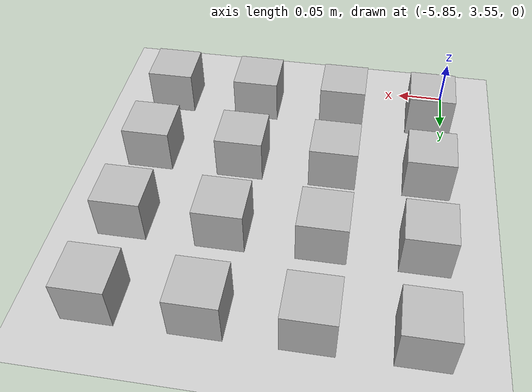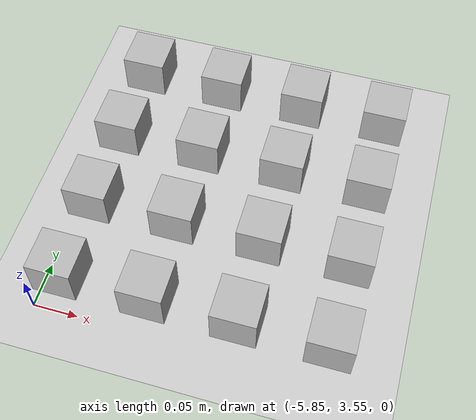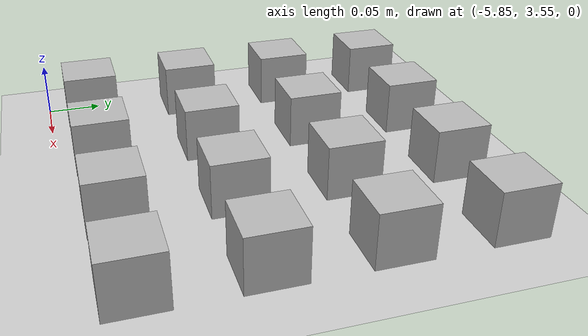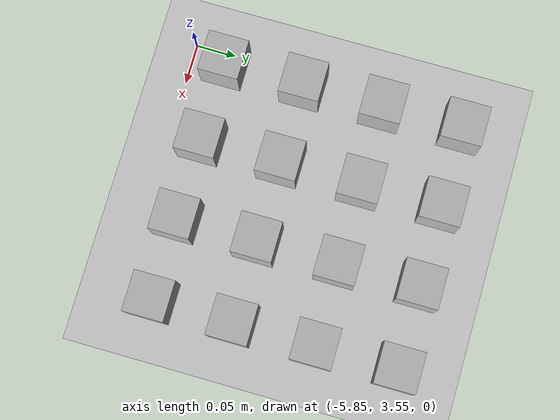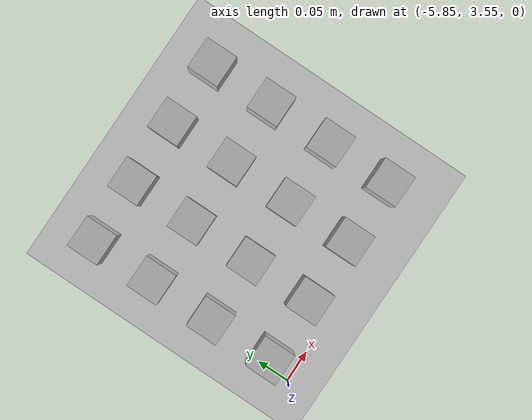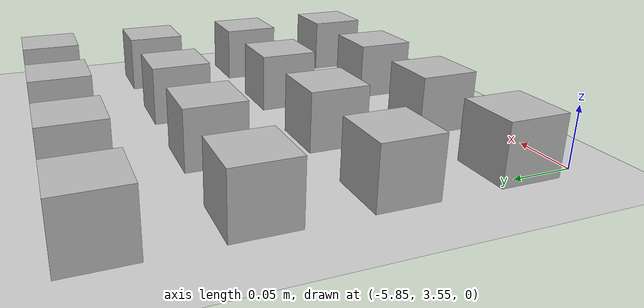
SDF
<sdf version="1.6">
 <world name="default">
  <model name="ground_plane">
   <static>1</static>
   <link name="link">
    <collision name="collision">
     <geometry><plane><normal>0 0 1</normal><size>100 100</size></plane></geometry>
     <surface><friction><ode><mu>100</mu><mu2>50</mu2></ode></friction></surface>
    </collision>
    <visual name="visual">
     <cast_shadows>0</cast_shadows>
     <geometry><plane><normal>0 0 1</normal><size>100 100</size></plane></geometry>
     <material>
      <script><uri>file://media/materials/scripts/gazebo.material</uri><name>Gazebo/Grey</name></script>
     </material>
    </visual>
   </link>
  </model>
  <model name="at32">
   <static>0</static>
   <link name="link">
    <inertial>
     <mass>0.01</mass>
     <inertia><ixx>4e-05</ixx><ixy>0</ixy><ixz>0</ixz><iyy>4e-05</iyy><iyz>0</iyz><izz>4e-05</izz></inertia>
    </inertial>
    <visual name="visual">
     <geometry><box><size>0.05 0.05 0.05</size></box></geometry>
     <material>
      <script>
       <uri>model://at0/materials/scripts</uri>
       <uri>model://at0/materials/textures</uri>
       <name>at0/Diffuse</name>
      </script>
     </material>
    </visual>
    <collision name="collision">
     <geometry><box><size>0.05 0.05 0.05</size></box></geometry>
     <surface><friction><ode><mu>0.8</mu><mu2>0.7</mu2></ode></friction></surface>
    </collision>
   </link>
   <pose>-5.83375 3.59232 0.025 0 -0 0</pose>
  </model>
  <model name="at33">
   <static>0</static>
   <link name="link">
    <inertial>
     <mass>0.01</mass>
     <inertia><ixx>4e-05</ixx><ixy>0</ixy><ixz>0</ixz><iyy>4e-05</iyy><iyz>0</iyz><izz>4e-05</izz></inertia>
    </inertial>
    <visual name="visual">
     <geometry><box><size>0.05 0.05 0.05</size></box></geometry>
     <material>
      <script>
       <uri>model://at0/materials/scripts</uri>
       <uri>model://at0/materials/textures</uri>
       <name>at0/Diffuse</name>
      </script>
     </material>
    </visual>
    <collision name="collision">
     <geometry><box><size>0.05 0.05 0.05</size></box></geometry>
     <surface><friction><ode><mu>0.8</mu><mu2>0.7</mu2></ode></friction></surface>
    </collision>
   </link>
   <pose>-5.73375 3.59232 0.025 0 -0 0</pose>
  </model>
  <model name="at34">
   <static>0</static>
   <link name="link">
    <inertial>
     <mass>0.01</mass>
     <inertia><ixx>4e-05</ixx><ixy>0</ixy><ixz>0</ixz><iyy>4e-05</iyy><iyz>0</iyz><izz>4e-05</izz></inertia>
    </inertial>
    <visual name="visual">
     <geometry><box><size>0.05 0.05 0.05</size></box></geometry>
     <material>
      <script>
       <uri>model://at0/materials/scripts</uri>
       <uri>model://at0/materials/textures</uri>
       <name>at0/Diffuse</name>
      </script>
     </material>
    </visual>
    <collision name="collision">
     <geometry><box><size>0.05 0.05 0.05</size></box></geometry>
     <surface><friction><ode><mu>0.8</mu><mu2>0.7</mu2></ode></friction></surface>
    </collision>
   </link>
   <pose>-5.63375 3.59232 0.025 0 -0 0</pose>
  </model>
  <model name="at35">
   <static>0</static>
   <link name="link">
    <inertial>
     <mass>0.01</mass>
     <inertia><ixx>4e-05</ixx><ixy>0</ixy><ixz>0</ixz><iyy>4e-05</iyy><iyz>0</iyz><izz>4e-05</izz></inertia>
    </inertial>
    <visual name="visual">
     <geometry><box><size>0.05 0.05 0.05</size></box></geometry>
     <material>
      <script>
       <uri>model://at0/materials/scripts</uri>
       <uri>model://at0/materials/textures</uri>
       <name>at0/Diffuse</name>
      </script>
     </material>
    </visual>
    <collision name="collision">
     <geometry><box><size>0.05 0.05 0.05</size></box></geometry>
     <surface><friction><ode><mu>0.8</mu><mu2>0.7</mu2></ode></friction></surface>
    </collision>
   </link>
   <pose>-5.53375 3.59232 0.025 0 -0 0</pose>
  </model>
  <model name="at36">
   <static>0</static>
   <link name="link">
    <inertial>
     <mass>0.01</mass>
     <inertia><ixx>4e-05</ixx><ixy>0</ixy><ixz>0</ixz><iyy>4e-05</iyy><iyz>0</iyz><izz>4e-05</izz></inertia>
    </inertial>
    <visual name="visual">
     <geometry><box><size>0.05 0.05 0.05</size></box></geometry>
     <material>
      <script>
       <uri>model://at0/materials/scripts</uri>
       <uri>model://at0/materials/textures</uri>
       <name>at0/Diffuse</name>
      </script>
     </material>
    </visual>
    <collision name="collision">
     <geometry><box><size>0.05 0.05 0.05</size></box></geometry>
     <surface><friction><ode><mu>0.8</mu><mu2>0.7</mu2></ode></friction></surface>
    </collision>
   </link>
   <pose>-5.83375 3.69232 0.025 0 -0 0</pose>
  </model>
  <model name="at37">
   <static>0</static>
   <link name="link">
    <inertial>
     <mass>0.01</mass>
     <inertia><ixx>4e-05</ixx><ixy>0</ixy><ixz>0</ixz><iyy>4e-05</iyy><iyz>0</iyz><izz>4e-05</izz></inertia>
    </inertial>
    <visual name="visual">
     <geometry><box><size>0.05 0.05 0.05</size></box></geometry>
     <material>
      <script>
       <uri>model://at0/materials/scripts</uri>
       <uri>model://at0/materials/textures</uri>
       <name>at0/Diffuse</name>
      </script>
     </material>
    </visual>
    <collision name="collision">
     <geometry><box><size>0.05 0.05 0.05</size></box></geometry>
     <surface><friction><ode><mu>0.8</mu><mu2>0.7</mu2></ode></friction></surface>
    </collision>
   </link>
   <pose>-5.73375 3.69232 0.025 0 -0 0</pose>
  </model>
  <model name="at38">
   <static>0</static>
   <link name="link">
    <inertial>
     <mass>0.01</mass>
     <inertia><ixx>4e-05</ixx><ixy>0</ixy><ixz>0</ixz><iyy>4e-05</iyy><iyz>0</iyz><izz>4e-05</izz></inertia>
    </inertial>
    <visual name="visual">
     <geometry><box><size>0.05 0.05 0.05</size></box></geometry>
     <material>
      <script>
       <uri>model://at0/materials/scripts</uri>
       <uri>model://at0/materials/textures</uri>
       <name>at0/Diffuse</name>
      </script>
     </material>
    </visual>
    <collision name="collision">
     <geometry><box><size>0.05 0.05 0.05</size></box></geometry>
     <surface><friction><ode><mu>0.8</mu><mu2>0.7</mu2></ode></friction></surface>
    </collision>
   </link>
   <pose>-5.63375 3.69232 0.025 0 -0 0</pose>
  </model>
  <model name="at39">
   <static>0</static>
   <link name="link">
    <inertial>
     <mass>0.01</mass>
     <inertia><ixx>4e-05</ixx><ixy>0</ixy><ixz>0</ixz><iyy>4e-05</iyy><iyz>0</iyz><izz>4e-05</izz></inertia>
    </inertial>
    <visual name="visual">
     <geometry><box><size>0.05 0.05 0.05</size></box></geometry>
     <material>
      <script>
       <uri>model://at0/materials/scripts</uri>
       <uri>model://at0/materials/textures</uri>
       <name>at0/Diffuse</name>
      </script>
     </material>
    </visual>
    <collision name="collision">
     <geometry><box><size>0.05 0.05 0.05</size></box></geometry>
     <surface><friction><ode><mu>0.8</mu><mu2>0.7</mu2></ode></friction></surface>
    </collision>
   </link>
   <pose>-5.53375 3.69232 0.025 0 -0 0</pose>
  </model>
  <model name="at40">
   <static>0</static>
   <link name="link">
    <inertial>
     <mass>0.01</mass>
     <inertia><ixx>4e-05</ixx><ixy>0</ixy><ixz>0</ixz><iyy>4e-05</iyy><iyz>0</iyz><izz>4e-05</izz></inertia>
    </inertial>
    <visual name="visual">
     <geometry><box><size>0.05 0.05 0.05</size></box></geometry>
     <material>
      <script>
       <uri>model://at0/materials/scripts</uri>
       <uri>model://at0/materials/textures</uri>
       <name>at0/Diffuse</name>
      </script>
     </material>
    </visual>
    <collision name="collision">
     <geometry><box><size>0.05 0.05 0.05</size></box></geometry>
     <surface><friction><ode><mu>0.8</mu><mu2>0.7</mu2></ode></friction></surface>
    </collision>
   </link>
   <pose>-5.83375 3.79232 0.025 0 -0 0</pose>
  </model>
  <model name="at41">
   <static>0</static>
   <link name="link">
    <inertial>
     <mass>0.01</mass>
     <inertia><ixx>4e-05</ixx><ixy>0</ixy><ixz>0</ixz><iyy>4e-05</iyy><iyz>0</iyz><izz>4e-05</izz></inertia>
    </inertial>
    <visual name="visual">
     <geometry><box><size>0.05 0.05 0.05</size></box></geometry>
     <material>
      <script>
       <uri>model://at0/materials/scripts</uri>
       <uri>model://at0/materials/textures</uri>
       <name>at0/Diffuse</name>
      </script>
     </material>
    </visual>
    <collision name="collision">
     <geometry><box><size>0.05 0.05 0.05</size></box></geometry>
     <surface><friction><ode><mu>0.8</mu><mu2>0.7</mu2></ode></friction></surface>
    </collision>
   </link>
   <pose>-5.73375 3.79232 0.025 0 -0 0</pose>
  </model>
  <model name="at42">
   <static>0</static>
   <link name="link">
    <inertial>
     <mass>0.01</mass>
     <inertia><ixx>4e-05</ixx><ixy>0</ixy><ixz>0</ixz><iyy>4e-05</iyy><iyz>0</iyz><izz>4e-05</izz></inertia>
    </inertial>
    <visual name="visual">
     <geometry><box><size>0.05 0.05 0.05</size></box></geometry>
     <material>
      <script>
       <uri>model://at0/materials/scripts</uri>
       <uri>model://at0/materials/textures</uri>
       <name>at0/Diffuse</name>
      </script>
     </material>
    </visual>
    <collision name="collision">
     <geometry><box><size>0.05 0.05 0.05</size></box></geometry>
     <surface><friction><ode><mu>0.8</mu><mu2>0.7</mu2></ode></friction></surface>
    </collision>
   </link>
   <pose>-5.63375 3.79232 0.025 0 -0 0</pose>
  </model>
  <model name="at43">
   <static>0</static>
   <link name="link">
    <inertial>
     <mass>0.01</mass>
     <inertia><ixx>4e-05</ixx><ixy>0</ixy><ixz>0</ixz><iyy>4e-05</iyy><iyz>0</iyz><izz>4e-05</izz></inertia>
    </inertial>
    <visual name="visual">
     <geometry><box><size>0.05 0.05 0.05</size></box></geometry>
     <material>
      <script>
       <uri>model://at0/materials/scripts</uri>
       <uri>model://at0/materials/textures</uri>
       <name>at0/Diffuse</name>
      </script>
     </material>
    </visual>
    <collision name="collision">
     <geometry><box><size>0.05 0.05 0.05</size></box></geometry>
     <surface><friction><ode><mu>0.8</mu><mu2>0.7</mu2></ode></friction></surface>
    </collision>
   </link>
   <pose>-5.53375 3.79232 0.025 0 -0 0</pose>
  </model>
  <model name="at44">
   <static>0</static>
   <link name="link">
    <inertial>
     <mass>0.01</mass>
     <inertia><ixx>4e-05</ixx><ixy>0</ixy><ixz>0</ixz><iyy>4e-05</iyy><iyz>0</iyz><izz>4e-05</izz></inertia>
    </inertial>
    <visual name="visual">
     <geometry><box><size>0.05 0.05 0.05</size></box></geometry>
     <material>
      <script>
       <uri>model://at0/materials/scripts</uri>
       <uri>model://at0/materials/textures</uri>
       <name>at0/Diffuse</name>
      </script>
     </material>
    </visual>
    <collision name="collision">
     <geometry><box><size>0.05 0.05 0.05</size></box></geometry>
     <surface><friction><ode><mu>0.8</mu><mu2>0.7</mu2></ode></friction></surface>
    </collision>
   </link>
   <pose>-5.83375 3.89232 0.025 0 -0 0</pose>
  </model>
  <model name="at45">
   <static>0</static>
   <link name="link">
    <inertial>
     <mass>0.01</mass>
     <inertia><ixx>4e-05</ixx><ixy>0</ixy><ixz>0</ixz><iyy>4e-05</iyy><iyz>0</iyz><izz>4e-05</izz></inertia>
    </inertial>
    <visual name="visual">
     <geometry><box><size>0.05 0.05 0.05</size></box></geometry>
     <material>
      <script>
       <uri>model://at0/materials/scripts</uri>
       <uri>model://at0/materials/textures</uri>
       <name>at0/Diffuse</name>
      </script>
     </material>
    </visual>
    <collision name="collision">
     <geometry><box><size>0.05 0.05 0.05</size></box></geometry>
     <surface><friction><ode><mu>0.8</mu><mu2>0.7</mu2></ode></friction></surface>
    </collision>
   </link>
   <pose>-5.73375 3.89232 0.025 0 -0 0</pose>
  </model>
  <model name="at46">
   <static>0</static>
   <link name="link">
    <inertial>
     <mass>0.01</mass>
     <inertia><ixx>4e-05</ixx><ixy>0</ixy><ixz>0</ixz><iyy>4e-05</iyy><iyz>0</iyz><izz>4e-05</izz></inertia>
    </inertial>
    <visual name="visual">
     <geometry><box><size>0.05 0.05 0.05</size></box></geometry>
     <material>
      <script>
       <uri>model://at0/materials/scripts</uri>
       <uri>model://at0/materials/textures</uri>
       <name>at0/Diffuse</name>
      </script>
     </material>
    </visual>
    <collision name="collision">
     <geometry><box><size>0.05 0.05 0.05</size></box></geometry>
     <surface><friction><ode><mu>0.8</mu><mu2>0.7</mu2></ode></friction></surface>
    </collision>
   </link>
   <pose>-5.63375 3.89232 0.025 0 -0 0</pose>
  </model>
  <model name="at47">
   <static>0</static>
   <link name="link">
    <inertial>
     <mass>0.01</mass>
     <inertia><ixx>4e-05</ixx><ixy>0</ixy><ixz>0</ixz><iyy>4e-05</iyy><iyz>0</iyz><izz>4e-05</izz></inertia>
    </inertial>
    <visual name="visual">
     <geometry><box><size>0.05 0.05 0.05</size></box></geometry>
     <material>
      <script>
       <uri>model://at0/materials/scripts</uri>
       <uri>model://at0/materials/textures</uri>
       <name>at0/Diffuse</name>
      </script>
     </material>
    </visual>
    <collision name="collision">
     <geometry><box><size>0.05 0.05 0.05</size></box></geometry>
     <surface><friction><ode><mu>0.8</mu><mu2>0.7</mu2></ode></friction></surface>
    </collision>
   </link>
   <pose>-5.53375 3.89232 0.025 0 -0 0</pose>
  </model>
 </world>
</sdf>
